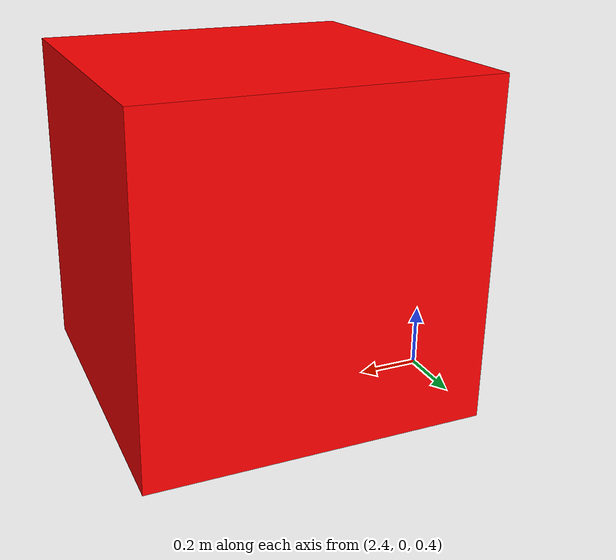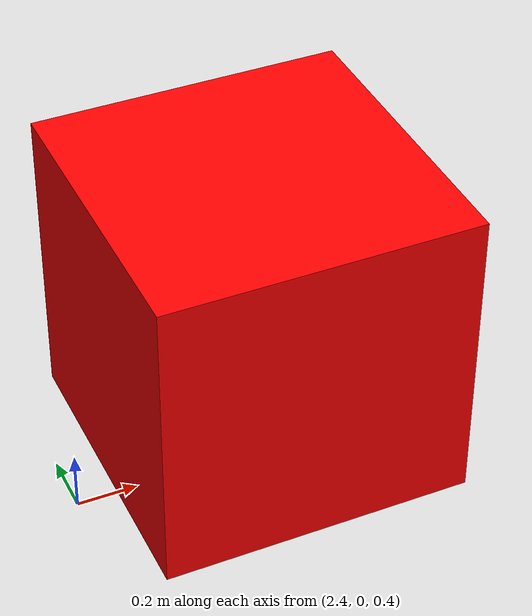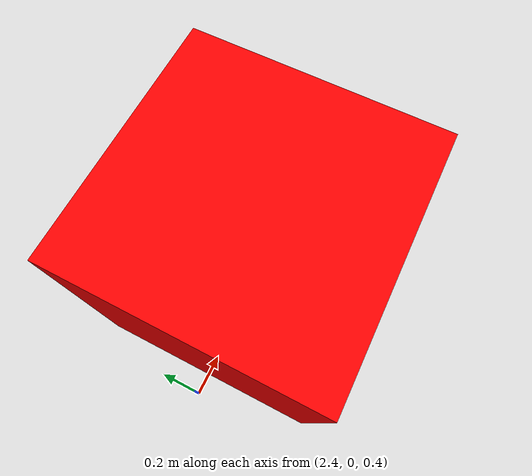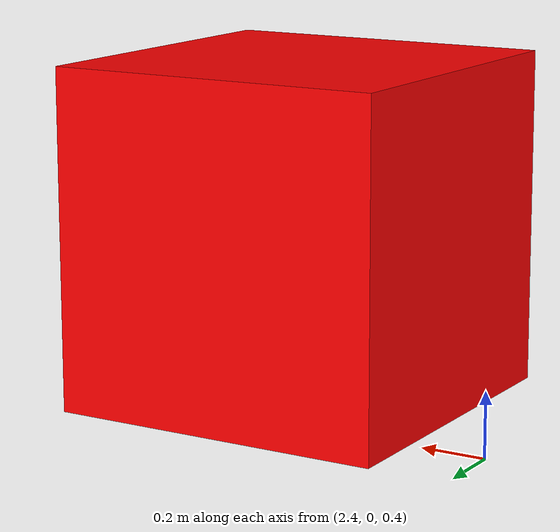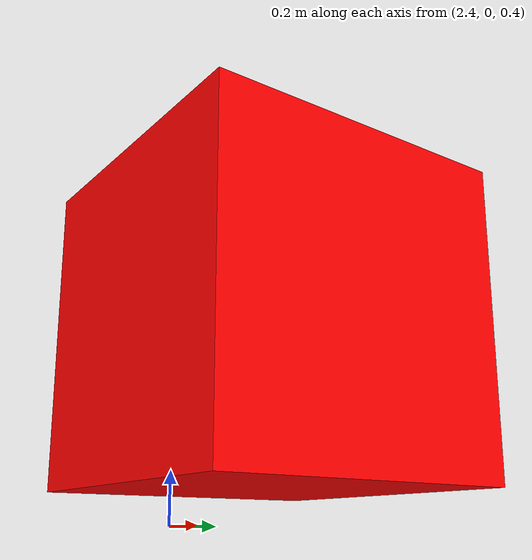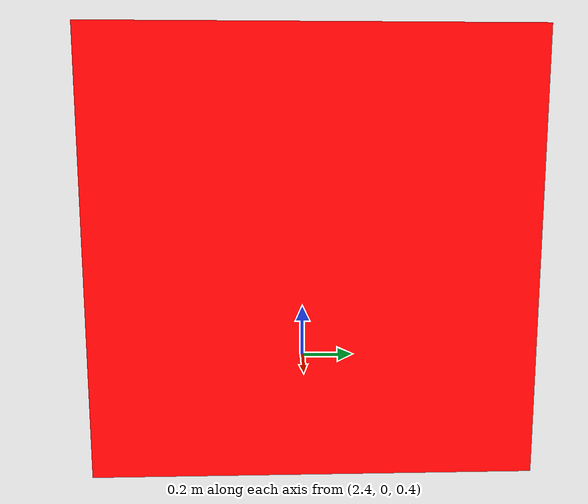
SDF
<?xml version="1.0"?>
<sdf version="1.6">
  <model name="red_cube">
    <pose>3 0 1 0 0 0</pose> <!-- 方块的位置 -->
    <link name="link">
      <visual name="visual">
        <geometry>
          <box><size>1 1 1</size></box> <!-- 方块尺寸 -->
        </geometry>
        <material>
          <ambient>1 0 0 1</ambient> <!-- 红色 -->
          <diffuse>1 0 0 1</diffuse>
        </material>
      </visual>
    </link>
  </model>
</sdf>
